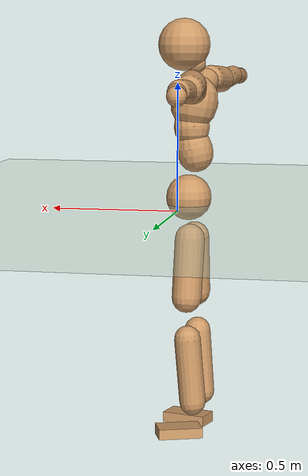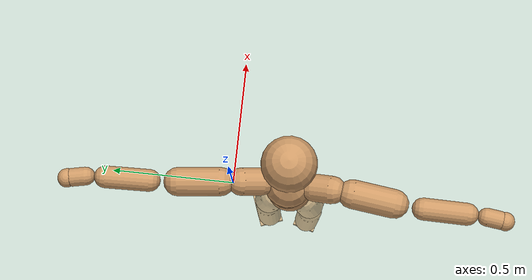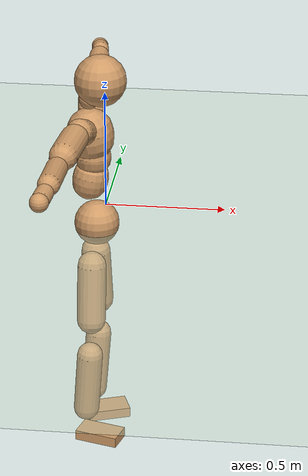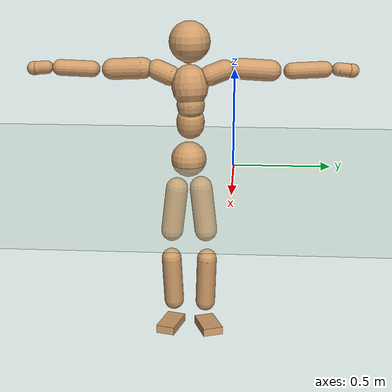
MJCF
<mujoco model="humanoid">
  <compiler coordinate="local"/>
  <default>
    <joint damping="0.0" armature="0.01" stiffness="0.0" limited="true"/>
    <geom conaffinity="1" condim="3" contype="7" margin="0.001" rgba="0.8 0.6 .4 1"/>
  </default>
  <asset>
    <texture type="skybox" builtin="gradient" rgb1=".4 .5 .6" rgb2="0 0 0" width="100" height="100"/>
    <texture builtin="flat" height="1278" mark="cross" markrgb="1 1 1" name="texgeom" random="0.01" rgb1="0.8 0.6 0.4" rgb2="0.8 0.6 0.4" type="cube" width="127"/>
    <texture builtin="checker" height="100" name="texplane" rgb1="0 0 0" rgb2="0.8 0.8 0.8" type="2d" width="100"/>
    <material name="MatPlane" reflectance="0.5" shininess="1" specular="1" texrepeat="60 60" texture="texplane"/>
    <material name="geom" texture="texgeom" texuniform="true"/>
  </asset>
  <worldbody>
    <light cutoff="100" diffuse="1 1 1" dir="-0 0 -1.3" directional="true" exponent="1" pos="0 0 1.3" specular=".1 .1 .1"/>
    <geom conaffinity="1" condim="3" name="floor" pos="0 0 0" rgba="0.8 0.9 0.8 1" size="100 100 .2" type="plane" material="MatPlane"/>
    <body name="Pelvis" pos="-0.0049 -0.2334 0.0269">
      <freejoint name="Pelvis"/>
      <geom type="sphere" contype="1" conaffinity="1" density="500" size="0.0920" pos="0.0000 0.0000 0.0000" name="Pelvis"/>
      <body name="L_Hip" pos="-0.0178 0.054 -0.0804">
        <joint name="L_Hip_x" type="hinge" pos="0 0 0" axis="1 0 0" stiffness="800" damping="80" armature="0.02" range="-180.0000 180.0000"/>
        <joint name="L_Hip_y" type="hinge" pos="0 0 0" axis="0 1 0" stiffness="800" damping="80" armature="0.02" range="-180.0000 180.0000"/>
        <joint name="L_Hip_z" type="hinge" pos="0 0 0" axis="0 0 1" stiffness="800" damping="80" armature="0.02" range="-180.0000 180.0000"/>
        <geom type="capsule" contype="1" conaffinity="1" density="500" fromto="0.0024 0.0092 -0.0792 0.0097 0.0366 -0.3169" size="0.0597" name="L_Hip"/>
        <body name="L_Knee" pos="0.0121 0.0458 -0.3961">
          <joint name="L_Knee_x" type="hinge" pos="0 0 0" axis="1 0 0" stiffness="800" damping="80" armature="0.02" range="-180.0000 180.0000"/>
          <joint name="L_Knee_y" type="hinge" pos="0 0 0" axis="0 1 0" stiffness="800" damping="80" armature="0.02" range="-180.0000 180.0000"/>
          <joint name="L_Knee_z" type="hinge" pos="0 0 0" axis="0 0 1" stiffness="800" damping="80" armature="0.02" range="-180.0000 180.0000"/>
          <geom type="capsule" contype="1" conaffinity="1" density="500" fromto="-0.0070 -0.0028 -0.0877 -0.0282 -0.0112 -0.3509" size="0.053" name="L_Knee"/>
          <body name="L_Ankle" pos="-0.0352 -0.014 -0.4386">
            <joint name="L_Ankle_x" type="hinge" pos="0 0 0" axis="1 0 0" stiffness="800" damping="80" armature="0.02" range="-180.0000 180.0000"/>
            <joint name="L_Ankle_y" type="hinge" pos="0 0 0" axis="0 1 0" stiffness="800" damping="80" armature="0.02" range="-180.0000 180.0000"/>
            <joint name="L_Ankle_z" type="hinge" pos="0 0 0" axis="0 0 1" stiffness="800" damping="80" armature="0.02" range="-180.0000 180.0000"/>
            <geom type="box" contype="1" conaffinity="1" density="500" pos="0.0608 0.0224 -0.0309" size="0.0889 0.0533 0.0209" quat="0.9845 0.0000 0.0000 0.1754" name="L_Ankle"/>
            <body name="L_Toe" pos="0.1216 0.0448 -0.0618">
              <joint name="L_Toe_x" type="hinge" pos="0 0 0" axis="1 0 0" stiffness="500" damping="50" armature="0.02" range="-180.0000 180.0000"/>
              <joint name="L_Toe_y" type="hinge" pos="0 0 0" axis="0 1 0" stiffness="500" damping="50" armature="0.02" range="-180.0000 180.0000"/>
              <joint name="L_Toe_z" type="hinge" pos="0 0 0" axis="0 0 1" stiffness="500" damping="50" armature="0.02" range="-180.0000 180.0000"/>
              <geom type="box" contype="1" conaffinity="1" density="500" pos="0.0000 0.0000 0.0310" size="0.0011 0.0026 0.001" quat="0.9837 0.0000 0.0000 0.1798" name="L_Toe"/>
            </body>
          </body>
        </body>
      </body>
      <body name="R_Hip" pos="-0.0134 -0.0555 -0.089">
        <joint name="R_Hip_x" type="hinge" pos="0 0 0" axis="1 0 0" stiffness="800" damping="80" armature="0.02" range="-180.0000 180.0000"/>
        <joint name="R_Hip_y" type="hinge" pos="0 0 0" axis="0 1 0" stiffness="800" damping="80" armature="0.02" range="-180.0000 180.0000"/>
        <joint name="R_Hip_z" type="hinge" pos="0 0 0" axis="0 0 1" stiffness="800" damping="80" armature="0.02" range="-180.0000 180.0000"/>
        <geom type="capsule" contype="1" conaffinity="1" density="500" fromto="-0.0005 -0.0089 -0.0785 -0.0021 -0.0358 -0.3140" size="0.0589" name="R_Hip"/>
        <body name="R_Knee" pos="-0.0026 -0.0447 -0.3925">
          <joint name="R_Knee_x" type="hinge" pos="0 0 0" axis="1 0 0" stiffness="800" damping="80" armature="0.02" range="-180.0000 180.0000"/>
          <joint name="R_Knee_y" type="hinge" pos="0 0 0" axis="0 1 0" stiffness="800" damping="80" armature="0.02" range="-180.0000 180.0000"/>
          <joint name="R_Knee_z" type="hinge" pos="0 0 0" axis="0 0 1" stiffness="800" damping="80" armature="0.02" range="-180.0000 180.0000"/>
          <geom type="capsule" contype="1" conaffinity="1" density="500" fromto="-0.0065 0.0037 -0.0863 -0.0260 0.0150 -0.3451" size="0.0532" name="R_Knee"/>
          <body name="R_Ankle" pos="-0.0325 0.0187 -0.4313">
            <joint name="R_Ankle_x" type="hinge" pos="0 0 0" axis="1 0 0" stiffness="800" damping="80" armature="0.02" range="-180.0000 180.0000"/>
            <joint name="R_Ankle_y" type="hinge" pos="0 0 0" axis="0 1 0" stiffness="800" damping="80" armature="0.02" range="-180.0000 180.0000"/>
            <joint name="R_Ankle_z" type="hinge" pos="0 0 0" axis="0 0 1" stiffness="800" damping="80" armature="0.02" range="-180.0000 180.0000"/>
            <geom type="box" contype="1" conaffinity="1" density="500" pos="0.0651 -0.0181 -0.0317" size="0.0915 0.0507 0.0215" quat="0.9908 0.0000 0.0000 -0.1350" name="R_Ankle"/>
            <body name="R_Toe" pos="0.1303 -0.0362 -0.0633">
              <joint name="R_Toe_x" type="hinge" pos="0 0 0" axis="1 0 0" stiffness="500" damping="50" armature="0.02" range="-180.0000 180.0000"/>
              <joint name="R_Toe_y" type="hinge" pos="0 0 0" axis="0 1 0" stiffness="500" damping="50" armature="0.02" range="-180.0000 180.0000"/>
              <joint name="R_Toe_z" type="hinge" pos="0 0 0" axis="0 0 1" stiffness="500" damping="50" armature="0.02" range="-180.0000 180.0000"/>
              <geom type="box" contype="1" conaffinity="1" density="500" pos="0.0000 0.0000 0.0318" size="0.001 0.0025 0.0011" quat="0.9920 0.0000 0.0000 -0.1260" name="R_Toe"/>
            </body>
          </body>
        </body>
      </body>
      <body name="Torso" pos="-0.0376 0.0048 0.1211">
        <joint name="Torso_x" type="hinge" pos="0 0 0" axis="1 0 0" stiffness="1000" damping="100" armature="0.02" range="-180.0000 180.0000"/>
        <joint name="Torso_y" type="hinge" pos="0 0 0" axis="0 1 0" stiffness="1000" damping="100" armature="0.02" range="-180.0000 180.0000"/>
        <joint name="Torso_z" type="hinge" pos="0 0 0" axis="0 0 1" stiffness="1000" damping="100" armature="0.02" range="-180.0000 180.0000"/>
        <geom type="capsule" contype="1" conaffinity="1" density="500" fromto="0.0150 0.0029 0.0824 0.0100 0.0019 0.0549" size="0.072075" name="Torso"/>
        <body name="Spine" pos="0.0249 0.0049 0.1373">
          <joint name="Spine_x" type="hinge" pos="0 0 0" axis="1 0 0" stiffness="1000" damping="100" armature="0.02" range="-180.0000 180.0000"/>
          <joint name="Spine_y" type="hinge" pos="0 0 0" axis="0 1 0" stiffness="1000" damping="100" armature="0.02" range="-180.0000 180.0000"/>
          <joint name="Spine_z" type="hinge" pos="0 0 0" axis="0 0 1" stiffness="1000" damping="100" armature="0.02" range="-180.0000 180.0000"/>
          <geom type="capsule" contype="1" conaffinity="1" density="500" fromto="0.0007 -0.0008 0.0331 0.0005 -0.0006 0.0221" size="0.072168" name="Spine"/>
          <body name="Chest" pos="0.0011 -0.0014 0.0552">
            <joint name="Chest_x" type="hinge" pos="0 0 0" axis="1 0 0" stiffness="1000" damping="100" armature="0.02" range="-180.0000 180.0000"/>
            <joint name="Chest_y" type="hinge" pos="0 0 0" axis="0 1 0" stiffness="1000" damping="100" armature="0.02" range="-180.0000 180.0000"/>
            <joint name="Chest_z" type="hinge" pos="0 0 0" axis="0 0 1" stiffness="1000" damping="100" armature="0.02" range="-180.0000 180.0000"/>
            <geom type="capsule" contype="1" conaffinity="1" density="500" fromto="-0.0125 -0.0048 0.0855 -0.0083 -0.0032 0.0570" size="0.094116" name="Chest"/>
            <body name="Neck" pos="-0.023 -0.0136 0.2069">
              <joint name="Neck_x" type="hinge" pos="0 0 0" axis="1 0 0" stiffness="500" damping="50" armature="0.02" range="-180.0000 180.0000"/>
              <joint name="Neck_y" type="hinge" pos="0 0 0" axis="0 1 0" stiffness="500" damping="50" armature="0.02" range="-180.0000 180.0000"/>
              <joint name="Neck_z" type="hinge" pos="0 0 0" axis="0 0 1" stiffness="500" damping="50" armature="0.02" range="-180.0000 180.0000"/>
              <geom type="capsule" contype="1" conaffinity="1" density="500" fromto="0.0109 0.0022 0.0186 0.0434 0.0087 0.0746" size="0.042036" name="Neck"/>
              <body name="Head" pos="0.0543 0.0109 0.0932">
                <joint name="Head_x" type="hinge" pos="0 0 0" axis="1 0 0" stiffness="500" damping="50" armature="0.02" range="-180.0000 180.0000"/>
                <joint name="Head_y" type="hinge" pos="0 0 0" axis="0 1 0" stiffness="500" damping="50" armature="0.02" range="-180.0000 180.0000"/>
                <joint name="Head_z" type="hinge" pos="0 0 0" axis="0 0 1" stiffness="500" damping="50" armature="0.02" range="-180.0000 180.0000"/>
                <geom type="sphere" contype="1" conaffinity="1" density="500" size="0.1048" pos="0.0000 0.0000 0.0000" name="Head"/>
              </body>
            </body>
            <body name="L_Thorax" pos="-0.0172 0.0724 0.1115">
              <joint name="L_Thorax_x" type="hinge" pos="0 0 0" axis="1 0 0" stiffness="500" damping="50" armature="0.02" range="-180.0000 180.0000"/>
              <joint name="L_Thorax_y" type="hinge" pos="0 0 0" axis="0 1 0" stiffness="500" damping="50" armature="0.02" range="-180.0000 180.0000"/>
              <joint name="L_Thorax_z" type="hinge" pos="0 0 0" axis="0 0 1" stiffness="500" damping="50" armature="0.02" range="-180.0000 180.0000"/>
              <geom type="capsule" contype="1" conaffinity="1" density="500" fromto="-0.0039 0.0247 0.0094 -0.0155 0.0986 0.0377" size="0.053" name="L_Thorax"/>
              <body name="L_Shoulder" pos="-0.0194 0.1233 0.0471">
                <joint name="L_Shoulder_x" type="hinge" pos="0 0 0" axis="1 0 0" stiffness="500" damping="50" armature="0.02" range="-720.0000 720.0000"/>
                <joint name="L_Shoulder_y" type="hinge" pos="0 0 0" axis="0 1 0" stiffness="500" damping="50" armature="0.02" range="-720.0000 720.0000"/>
                <joint name="L_Shoulder_z" type="hinge" pos="0 0 0" axis="0 0 1" stiffness="500" damping="50" armature="0.02" range="-720.0000 720.0000"/>
                <geom type="capsule" contype="1" conaffinity="1" density="500" fromto="-0.0050 0.0530 -0.0037 -0.0200 0.2118 -0.0147" size="0.0547" name="L_Shoulder"/>
                <body name="L_Elbow" pos="-0.0251 0.2648 -0.0184">
                  <joint name="L_Elbow_x" type="hinge" pos="0 0 0" axis="1 0 0" stiffness="500" damping="50" armature="0.02" range="-720.0000 720.0000"/>
                  <joint name="L_Elbow_y" type="hinge" pos="0 0 0" axis="0 1 0" stiffness="500" damping="50" armature="0.02" range="-720.0000 720.0000"/>
                  <joint name="L_Elbow_z" type="hinge" pos="0 0 0" axis="0 0 1" stiffness="500" damping="50" armature="0.02" range="-720.0000 720.0000"/>
                  <geom type="capsule" contype="1" conaffinity="1" density="500" fromto="-0.0015 0.0549 0.0029 -0.0060 0.2196 0.0114" size="0.0423" name="L_Elbow"/>
                  <body name="L_Wrist" pos="-0.0075 0.2745 0.0143">
                    <joint name="L_Wrist_x" type="hinge" pos="0 0 0" axis="1 0 0" stiffness="300" damping="30" armature="0.02" range="-180.0000 180.0000"/>
                    <joint name="L_Wrist_y" type="hinge" pos="0 0 0" axis="0 1 0" stiffness="300" damping="30" armature="0.02" range="-180.0000 180.0000"/>
                    <joint name="L_Wrist_z" type="hinge" pos="0 0 0" axis="0 0 1" stiffness="300" damping="30" armature="0.02" range="-180.0000 180.0000"/>
                    <geom type="capsule" contype="1" conaffinity="1" density="500" fromto="-0.0032 0.0177 -0.0022 -0.0128 0.0708 -0.0087" size="0.0346" name="L_Wrist"/>
                    <body name="L_Hand" pos="-0.0161 0.0885 -0.0109">
                      <joint name="L_Hand_x" type="hinge" pos="0 0 0" axis="1 0 0" stiffness="300" damping="30" armature="0.02" range="-180.0000 180.0000"/>
                      <joint name="L_Hand_y" type="hinge" pos="0 0 0" axis="0 1 0" stiffness="300" damping="30" armature="0.02" range="-180.0000 180.0000"/>
                      <joint name="L_Hand_z" type="hinge" pos="0 0 0" axis="0 0 1" stiffness="300" damping="30" armature="0.02" range="-180.0000 180.0000"/>
                      <geom type="sphere" contype="1" conaffinity="1" density="500" size="0.0363" pos="0.0000 0.0000 0.0000" name="L_Hand"/>
                    </body>
                  </body>
                </body>
              </body>
            </body>
            <body name="R_Thorax" pos="-0.0222 -0.0828 0.1092">
              <joint name="R_Thorax_x" type="hinge" pos="0 0 0" axis="1 0 0" stiffness="500" damping="50" armature="0.02" range="-180.0000 180.0000"/>
              <joint name="R_Thorax_y" type="hinge" pos="0 0 0" axis="0 1 0" stiffness="500" damping="50" armature="0.02" range="-180.0000 180.0000"/>
              <joint name="R_Thorax_z" type="hinge" pos="0 0 0" axis="0 0 1" stiffness="500" damping="50" armature="0.02" range="-180.0000 180.0000"/>
              <geom type="capsule" contype="1" conaffinity="1" density="500" fromto="-0.0017 -0.0224 0.0096 -0.0069 -0.0897 0.0383" size="0.0528" name="R_Thorax"/>
              <body name="R_Shoulder" pos="-0.0086 -0.1121 0.0479">
                <joint name="R_Shoulder_x" type="hinge" pos="0 0 0" axis="1 0 0" stiffness="500" damping="50" armature="0.02" range="-720.0000 720.0000"/>
                <joint name="R_Shoulder_y" type="hinge" pos="0 0 0" axis="0 1 0" stiffness="500" damping="50" armature="0.02" range="-720.0000 720.0000"/>
                <joint name="R_Shoulder_z" type="hinge" pos="0 0 0" axis="0 0 1" stiffness="500" damping="50" armature="0.02" range="-720.0000 720.0000"/>
                <geom type="capsule" contype="1" conaffinity="1" density="500" fromto="-0.0065 -0.0534 -0.0034 -0.0260 -0.2137 -0.0134" size="0.055" name="R_Shoulder"/>
                <body name="R_Elbow" pos="-0.0325 -0.2671 -0.0168">
                  <joint name="R_Elbow_x" type="hinge" pos="0 0 0" axis="1 0 0" stiffness="500" damping="50" armature="0.02" range="-720.0000 720.0000"/>
                  <joint name="R_Elbow_y" type="hinge" pos="0 0 0" axis="0 1 0" stiffness="500" damping="50" armature="0.02" range="-720.0000 720.0000"/>
                  <joint name="R_Elbow_z" type="hinge" pos="0 0 0" axis="0 0 1" stiffness="500" damping="50" armature="0.02" range="-720.0000 720.0000"/>
                  <geom type="capsule" contype="1" conaffinity="1" density="500" fromto="-0.0011 -0.0553 0.0017 -0.0044 -0.2211 0.0069" size="0.0425" name="R_Elbow"/>
                  <body name="R_Wrist" pos="-0.0055 -0.2764 0.0086">
                    <joint name="R_Wrist_x" type="hinge" pos="0 0 0" axis="1 0 0" stiffness="300" damping="30" armature="0.02" range="-180.0000 180.0000"/>
                    <joint name="R_Wrist_y" type="hinge" pos="0 0 0" axis="0 1 0" stiffness="300" damping="30" armature="0.02" range="-180.0000 180.0000"/>
                    <joint name="R_Wrist_z" type="hinge" pos="0 0 0" axis="0 0 1" stiffness="300" damping="30" armature="0.02" range="-180.0000 180.0000"/>
                    <geom type="capsule" contype="1" conaffinity="1" density="500" fromto="-0.0021 -0.0178 -0.0018 -0.0084 -0.0711 -0.0070" size="0.0346" name="R_Wrist"/>
                    <body name="R_Hand" pos="-0.0105 -0.0889 -0.0088">
                      <joint name="R_Hand_x" type="hinge" pos="0 0 0" axis="1 0 0" stiffness="300" damping="30" armature="0.02" range="-180.0000 180.0000"/>
                      <joint name="R_Hand_y" type="hinge" pos="0 0 0" axis="0 1 0" stiffness="300" damping="30" armature="0.02" range="-180.0000 180.0000"/>
                      <joint name="R_Hand_z" type="hinge" pos="0 0 0" axis="0 0 1" stiffness="300" damping="30" armature="0.02" range="-180.0000 180.0000"/>
                      <geom type="sphere" contype="1" conaffinity="1" density="500" size="0.0361" pos="0.0000 0.0000 0.0000" name="R_Hand"/>
                    </body>
                  </body>
                </body>
              </body>
            </body>
          </body>
        </body>
      </body>
    </body>
  </worldbody>
  <actuator>
    <motor name="L_Hip_x" joint="L_Hip_x" gear="500"/>
    <motor name="L_Hip_y" joint="L_Hip_y" gear="500"/>
    <motor name="L_Hip_z" joint="L_Hip_z" gear="500"/>
    <motor name="L_Knee_x" joint="L_Knee_x" gear="500"/>
    <motor name="L_Knee_y" joint="L_Knee_y" gear="500"/>
    <motor name="L_Knee_z" joint="L_Knee_z" gear="500"/>
    <motor name="L_Ankle_x" joint="L_Ankle_x" gear="500"/>
    <motor name="L_Ankle_y" joint="L_Ankle_y" gear="500"/>
    <motor name="L_Ankle_z" joint="L_Ankle_z" gear="500"/>
    <motor name="L_Toe_x" joint="L_Toe_x" gear="500"/>
    <motor name="L_Toe_y" joint="L_Toe_y" gear="500"/>
    <motor name="L_Toe_z" joint="L_Toe_z" gear="500"/>
    <motor name="R_Hip_x" joint="R_Hip_x" gear="500"/>
    <motor name="R_Hip_y" joint="R_Hip_y" gear="500"/>
    <motor name="R_Hip_z" joint="R_Hip_z" gear="500"/>
    <motor name="R_Knee_x" joint="R_Knee_x" gear="500"/>
    <motor name="R_Knee_y" joint="R_Knee_y" gear="500"/>
    <motor name="R_Knee_z" joint="R_Knee_z" gear="500"/>
    <motor name="R_Ankle_x" joint="R_Ankle_x" gear="500"/>
    <motor name="R_Ankle_y" joint="R_Ankle_y" gear="500"/>
    <motor name="R_Ankle_z" joint="R_Ankle_z" gear="500"/>
    <motor name="R_Toe_x" joint="R_Toe_x" gear="500"/>
    <motor name="R_Toe_y" joint="R_Toe_y" gear="500"/>
    <motor name="R_Toe_z" joint="R_Toe_z" gear="500"/>
    <motor name="Torso_x" joint="Torso_x" gear="500"/>
    <motor name="Torso_y" joint="Torso_y" gear="500"/>
    <motor name="Torso_z" joint="Torso_z" gear="500"/>
    <motor name="Spine_x" joint="Spine_x" gear="500"/>
    <motor name="Spine_y" joint="Spine_y" gear="500"/>
    <motor name="Spine_z" joint="Spine_z" gear="500"/>
    <motor name="Chest_x" joint="Chest_x" gear="500"/>
    <motor name="Chest_y" joint="Chest_y" gear="500"/>
    <motor name="Chest_z" joint="Chest_z" gear="500"/>
    <motor name="Neck_x" joint="Neck_x" gear="500"/>
    <motor name="Neck_y" joint="Neck_y" gear="500"/>
    <motor name="Neck_z" joint="Neck_z" gear="500"/>
    <motor name="Head_x" joint="Head_x" gear="500"/>
    <motor name="Head_y" joint="Head_y" gear="500"/>
    <motor name="Head_z" joint="Head_z" gear="500"/>
    <motor name="L_Thorax_x" joint="L_Thorax_x" gear="500"/>
    <motor name="L_Thorax_y" joint="L_Thorax_y" gear="500"/>
    <motor name="L_Thorax_z" joint="L_Thorax_z" gear="500"/>
    <motor name="L_Shoulder_x" joint="L_Shoulder_x" gear="500"/>
    <motor name="L_Shoulder_y" joint="L_Shoulder_y" gear="500"/>
    <motor name="L_Shoulder_z" joint="L_Shoulder_z" gear="500"/>
    <motor name="L_Elbow_x" joint="L_Elbow_x" gear="500"/>
    <motor name="L_Elbow_y" joint="L_Elbow_y" gear="500"/>
    <motor name="L_Elbow_z" joint="L_Elbow_z" gear="500"/>
    <motor name="L_Wrist_x" joint="L_Wrist_x" gear="500"/>
    <motor name="L_Wrist_y" joint="L_Wrist_y" gear="500"/>
    <motor name="L_Wrist_z" joint="L_Wrist_z" gear="500"/>
    <motor name="L_Hand_x" joint="L_Hand_x" gear="500"/>
    <motor name="L_Hand_y" joint="L_Hand_y" gear="500"/>
    <motor name="L_Hand_z" joint="L_Hand_z" gear="500"/>
    <motor name="R_Thorax_x" joint="R_Thorax_x" gear="500"/>
    <motor name="R_Thorax_y" joint="R_Thorax_y" gear="500"/>
    <motor name="R_Thorax_z" joint="R_Thorax_z" gear="500"/>
    <motor name="R_Shoulder_x" joint="R_Shoulder_x" gear="500"/>
    <motor name="R_Shoulder_y" joint="R_Shoulder_y" gear="500"/>
    <motor name="R_Shoulder_z" joint="R_Shoulder_z" gear="500"/>
    <motor name="R_Elbow_x" joint="R_Elbow_x" gear="500"/>
    <motor name="R_Elbow_y" joint="R_Elbow_y" gear="500"/>
    <motor name="R_Elbow_z" joint="R_Elbow_z" gear="500"/>
    <motor name="R_Wrist_x" joint="R_Wrist_x" gear="500"/>
    <motor name="R_Wrist_y" joint="R_Wrist_y" gear="500"/>
    <motor name="R_Wrist_z" joint="R_Wrist_z" gear="500"/>
    <motor name="R_Hand_x" joint="R_Hand_x" gear="500"/>
    <motor name="R_Hand_y" joint="R_Hand_y" gear="500"/>
    <motor name="R_Hand_z" joint="R_Hand_z" gear="500"/>
  </actuator>
  <contact>
    <exclude body1="Torso" body2="Chest"/>
    <exclude body1="Head" body2="Chest"/>
    <exclude body1="R_Knee" body2="R_Toe"/>
    <exclude body1="R_Knee" body2="L_Ankle"/>
    <exclude body1="R_Knee" body2="L_Toe"/>
    <exclude body1="L_Knee" body2="L_Toe"/>
    <exclude body1="L_Knee" body2="R_Ankle"/>
    <exclude body1="L_Knee" body2="R_Toe"/>
    <exclude body1="L_Shoulder" body2="Chest"/>
    <exclude body1="R_Shoulder" body2="Chest"/>
  </contact>
  <sensor/>
  <size njmax="700" nconmax="700"/>
</mujoco>
